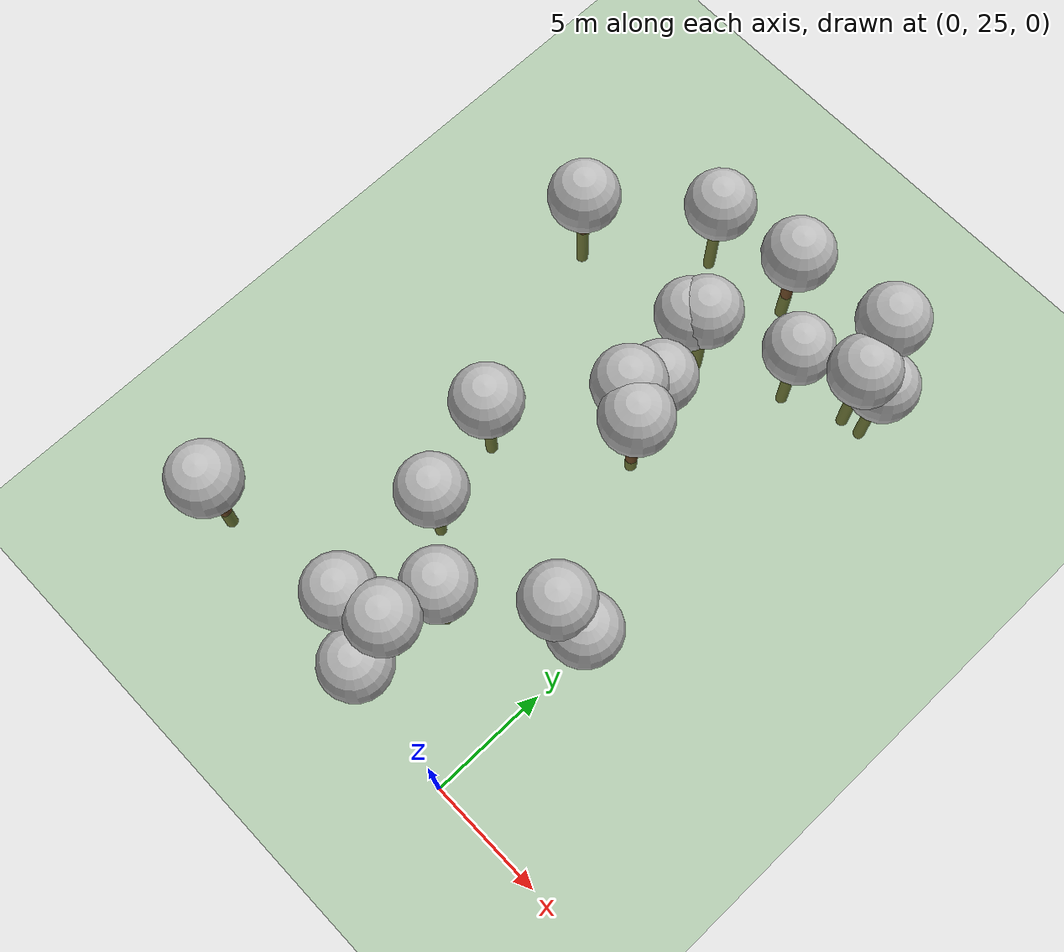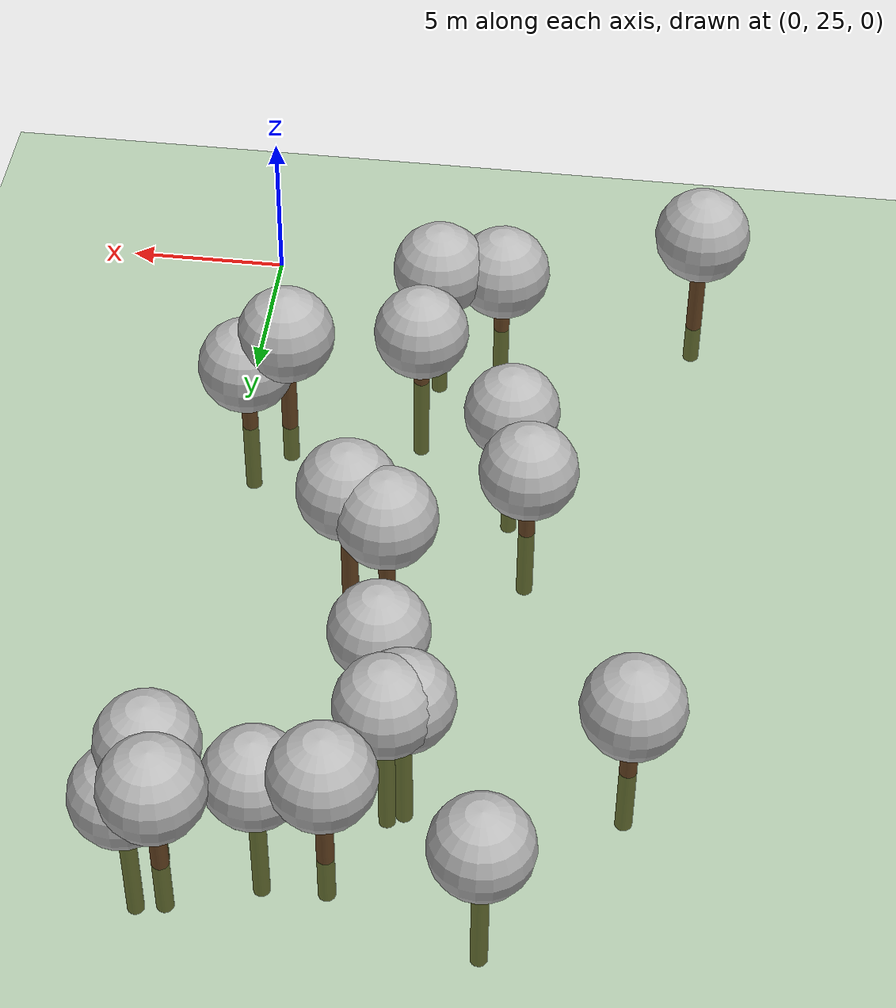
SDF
<sdf version="1.7">
 <world name="default">
  <model name="tree_simple492">
   <static>1</static>
   <link name="link">
    <pose>0 0 0.1 0 -0 0</pose>
    <collision name="collision_trunk">
     <pose>0 0 2 0 -0 0</pose>
     <geometry><cylinder><radius>0.25</radius><length>4</length></cylinder></geometry>
    </collision>
    <collision name="collision_treetop">
     <pose>0 0 5.2 0 -0 0</pose>
     <geometry><sphere><radius>1.5</radius></sphere></geometry>
    </collision>
    <visual name="trunk">
     <pose>0 0 2 0 -0 0</pose>
     <geometry><cylinder><radius>0.25</radius><length>4</length></cylinder></geometry>
     <material>
      <script>
       <uri>model://tree_simple/scripts</uri>
       <uri>model://tree_simple/materials/textures</uri>
       <name>TreeSimple/Trunk</name>
      </script>
     </material>
    </visual>
    <visual name="treetop">
     <pose>0 0 5.2 0 -0 0</pose>
     <geometry><sphere><radius>1.5</radius></sphere></geometry>
     <material>
      <script>
       <uri>model://tree_simple/scripts</uri>
       <uri>model://tree_simple/materials/textures</uri>
       <name>TreeSimple/Treetop</name>
      </script>
     </material>
    </visual>
   </link>
   <pose>-7.60604 27.1336 -2.96977 0 -0 0</pose>
  </model>
  <model name="tree_simple483">
   <static>1</static>
   <link name="link">
    <pose>0 0 0.1 0 -0 0</pose>
    <collision name="collision_trunk">
     <pose>0 0 2 0 -0 0</pose>
     <geometry><cylinder><radius>0.25</radius><length>4</length></cylinder></geometry>
    </collision>
    <collision name="collision_treetop">
     <pose>0 0 5.2 0 -0 0</pose>
     <geometry><sphere><radius>1.5</radius></sphere></geometry>
    </collision>
    <visual name="trunk">
     <pose>0 0 2 0 -0 0</pose>
     <geometry><cylinder><radius>0.25</radius><length>4</length></cylinder></geometry>
     <material>
      <script>
       <uri>model://tree_simple/scripts</uri>
       <uri>model://tree_simple/materials/textures</uri>
       <name>TreeSimple/Trunk</name>
      </script>
     </material>
    </visual>
    <visual name="treetop">
     <pose>0 0 5.2 0 -0 0</pose>
     <geometry><sphere><radius>1.5</radius></sphere></geometry>
     <material>
      <script>
       <uri>model://tree_simple/scripts</uri>
       <uri>model://tree_simple/materials/textures</uri>
       <name>TreeSimple/Treetop</name>
      </script>
     </material>
    </visual>
   </link>
   <pose>-6.65162 44.7613 -3.48208 0 -0 0</pose>
  </model>
  <model name="tree_simple477">
   <static>1</static>
   <link name="link">
    <pose>0 0 0.1 0 -0 0</pose>
    <collision name="collision_trunk">
     <pose>0 0 2 0 -0 0</pose>
     <geometry><cylinder><radius>0.25</radius><length>4</length></cylinder></geometry>
    </collision>
    <collision name="collision_treetop">
     <pose>0 0 5.2 0 -0 0</pose>
     <geometry><sphere><radius>1.5</radius></sphere></geometry>
    </collision>
    <visual name="trunk">
     <pose>0 0 2 0 -0 0</pose>
     <geometry><cylinder><radius>0.25</radius><length>4</length></cylinder></geometry>
     <material>
      <script>
       <uri>model://tree_simple/scripts</uri>
       <uri>model://tree_simple/materials/textures</uri>
       <name>TreeSimple/Trunk</name>
      </script>
     </material>
    </visual>
    <visual name="treetop">
     <pose>0 0 5.2 0 -0 0</pose>
     <geometry><sphere><radius>1.5</radius></sphere></geometry>
     <material>
      <script>
       <uri>model://tree_simple/scripts</uri>
       <uri>model://tree_simple/materials/textures</uri>
       <name>TreeSimple/Treetop</name>
      </script>
     </material>
    </visual>
   </link>
   <pose>-0.229271 32.6496 -2.76067 0 -0 0</pose>
  </model>
  <model name="tree_simple436">
   <static>1</static>
   <link name="link">
    <pose>0 0 0.1 0 -0 0</pose>
    <collision name="collision_trunk">
     <pose>0 0 2 0 -0 0</pose>
     <geometry><cylinder><radius>0.25</radius><length>4</length></cylinder></geometry>
    </collision>
    <collision name="collision_treetop">
     <pose>0 0 5.2 0 -0 0</pose>
     <geometry><sphere><radius>1.5</radius></sphere></geometry>
    </collision>
    <visual name="trunk">
     <pose>0 0 2 0 -0 0</pose>
     <geometry><cylinder><radius>0.25</radius><length>4</length></cylinder></geometry>
     <material>
      <script>
       <uri>model://tree_simple/scripts</uri>
       <uri>model://tree_simple/materials/textures</uri>
       <name>TreeSimple/Trunk</name>
      </script>
     </material>
    </visual>
    <visual name="treetop">
     <pose>0 0 5.2 0 -0 0</pose>
     <geometry><sphere><radius>1.5</radius></sphere></geometry>
     <material>
      <script>
       <uri>model://tree_simple/scripts</uri>
       <uri>model://tree_simple/materials/textures</uri>
       <name>TreeSimple/Treetop</name>
      </script>
     </material>
    </visual>
   </link>
   <pose>-12.9774 44.9895 -2.54678 0 -0 0</pose>
  </model>
  <model name="tree_simple425">
   <static>1</static>
   <link name="link">
    <pose>0 0 0.1 0 -0 0</pose>
    <collision name="collision_trunk">
     <pose>0 0 2 0 -0 0</pose>
     <geometry><cylinder><radius>0.25</radius><length>4</length></cylinder></geometry>
    </collision>
    <collision name="collision_treetop">
     <pose>0 0 5.2 0 -0 0</pose>
     <geometry><sphere><radius>1.5</radius></sphere></geometry>
    </collision>
    <visual name="trunk">
     <pose>0 0 2 0 -0 0</pose>
     <geometry><cylinder><radius>0.25</radius><length>4</length></cylinder></geometry>
     <material>
      <script>
       <uri>model://tree_simple/scripts</uri>
       <uri>model://tree_simple/materials/textures</uri>
       <name>TreeSimple/Trunk</name>
      </script>
     </material>
    </visual>
    <visual name="treetop">
     <pose>0 0 5.2 0 -0 0</pose>
     <geometry><sphere><radius>1.5</radius></sphere></geometry>
     <material>
      <script>
       <uri>model://tree_simple/scripts</uri>
       <uri>model://tree_simple/materials/textures</uri>
       <name>TreeSimple/Treetop</name>
      </script>
     </material>
    </visual>
   </link>
   <pose>-9.29415 36.1907 -2.72997 0 -0 0</pose>
  </model>
  <model name="tree_simple398">
   <static>1</static>
   <link name="link">
    <pose>0 0 0.1 0 -0 0</pose>
    <collision name="collision_trunk">
     <pose>0 0 2 0 -0 0</pose>
     <geometry><cylinder><radius>0.25</radius><length>4</length></cylinder></geometry>
    </collision>
    <collision name="collision_treetop">
     <pose>0 0 5.2 0 -0 0</pose>
     <geometry><sphere><radius>1.5</radius></sphere></geometry>
    </collision>
    <visual name="trunk">
     <pose>0 0 2 0 -0 0</pose>
     <geometry><cylinder><radius>0.25</radius><length>4</length></cylinder></geometry>
     <material>
      <script>
       <uri>model://tree_simple/scripts</uri>
       <uri>model://tree_simple/materials/textures</uri>
       <name>TreeSimple/Trunk</name>
      </script>
     </material>
    </visual>
    <visual name="treetop">
     <pose>0 0 5.2 0 -0 0</pose>
     <geometry><sphere><radius>1.5</radius></sphere></geometry>
     <material>
      <script>
       <uri>model://tree_simple/scripts</uri>
       <uri>model://tree_simple/materials/textures</uri>
       <name>TreeSimple/Treetop</name>
      </script>
     </material>
    </visual>
   </link>
   <pose>-5.63129 27.5986 -2.614 0 -0 0</pose>
  </model>
  <model name="tree_simple356">
   <static>1</static>
   <link name="link">
    <pose>0 0 0.1 0 -0 0</pose>
    <collision name="collision_trunk">
     <pose>0 0 2 0 -0 0</pose>
     <geometry><cylinder><radius>0.25</radius><length>4</length></cylinder></geometry>
    </collision>
    <collision name="collision_treetop">
     <pose>0 0 5.2 0 -0 0</pose>
     <geometry><sphere><radius>1.5</radius></sphere></geometry>
    </collision>
    <visual name="trunk">
     <pose>0 0 2 0 -0 0</pose>
     <geometry><cylinder><radius>0.25</radius><length>4</length></cylinder></geometry>
     <material>
      <script>
       <uri>model://tree_simple/scripts</uri>
       <uri>model://tree_simple/materials/textures</uri>
       <name>TreeSimple/Trunk</name>
      </script>
     </material>
    </visual>
    <visual name="treetop">
     <pose>0 0 5.2 0 -0 0</pose>
     <geometry><sphere><radius>1.5</radius></sphere></geometry>
     <material>
      <script>
       <uri>model://tree_simple/scripts</uri>
       <uri>model://tree_simple/materials/textures</uri>
       <name>TreeSimple/Treetop</name>
      </script>
     </material>
    </visual>
   </link>
   <pose>-2.8303 47.1649 -4.45525 0 -0 0</pose>
  </model>
  <model name="tree_simple353">
   <static>1</static>
   <link name="link">
    <pose>0 0 0.1 0 -0 0</pose>
    <collision name="collision_trunk">
     <pose>0 0 2 0 -0 0</pose>
     <geometry><cylinder><radius>0.25</radius><length>4</length></cylinder></geometry>
    </collision>
    <collision name="collision_treetop">
     <pose>0 0 5.2 0 -0 0</pose>
     <geometry><sphere><radius>1.5</radius></sphere></geometry>
    </collision>
    <visual name="trunk">
     <pose>0 0 2 0 -0 0</pose>
     <geometry><cylinder><radius>0.25</radius><length>4</length></cylinder></geometry>
     <material>
      <script>
       <uri>model://tree_simple/scripts</uri>
       <uri>model://tree_simple/materials/textures</uri>
       <name>TreeSimple/Trunk</name>
      </script>
     </material>
    </visual>
    <visual name="treetop">
     <pose>0 0 5.2 0 -0 0</pose>
     <geometry><sphere><radius>1.5</radius></sphere></geometry>
     <material>
      <script>
       <uri>model://tree_simple/scripts</uri>
       <uri>model://tree_simple/materials/textures</uri>
       <name>TreeSimple/Treetop</name>
      </script>
     </material>
    </visual>
   </link>
   <pose>-8.45319 32.4449 -3.95964 0 -0 0</pose>
  </model>
  <model name="tree_simple302">
   <static>1</static>
   <link name="link">
    <pose>0 0 0.1 0 -0 0</pose>
    <collision name="collision_trunk">
     <pose>0 0 2 0 -0 0</pose>
     <geometry><cylinder><radius>0.25</radius><length>4</length></cylinder></geometry>
    </collision>
    <collision name="collision_treetop">
     <pose>0 0 5.2 0 -0 0</pose>
     <geometry><sphere><radius>1.5</radius></sphere></geometry>
    </collision>
    <visual name="trunk">
     <pose>0 0 2 0 -0 0</pose>
     <geometry><cylinder><radius>0.25</radius><length>4</length></cylinder></geometry>
     <material>
      <script>
       <uri>model://tree_simple/scripts</uri>
       <uri>model://tree_simple/materials/textures</uri>
       <name>TreeSimple/Trunk</name>
      </script>
     </material>
    </visual>
    <visual name="treetop">
     <pose>0 0 5.2 0 -0 0</pose>
     <geometry><sphere><radius>1.5</radius></sphere></geometry>
     <material>
      <script>
       <uri>model://tree_simple/scripts</uri>
       <uri>model://tree_simple/materials/textures</uri>
       <name>TreeSimple/Treetop</name>
      </script>
     </material>
    </visual>
   </link>
   <pose>-4.36833 39.3035 -0.98079 0 -0 0</pose>
  </model>
  <model name="tree_simple299">
   <static>1</static>
   <link name="link">
    <pose>0 0 0.1 0 -0 0</pose>
    <collision name="collision_trunk">
     <pose>0 0 2 0 -0 0</pose>
     <geometry><cylinder><radius>0.25</radius><length>4</length></cylinder></geometry>
    </collision>
    <collision name="collision_treetop">
     <pose>0 0 5.2 0 -0 0</pose>
     <geometry><sphere><radius>1.5</radius></sphere></geometry>
    </collision>
    <visual name="trunk">
     <pose>0 0 2 0 -0 0</pose>
     <geometry><cylinder><radius>0.25</radius><length>4</length></cylinder></geometry>
     <material>
      <script>
       <uri>model://tree_simple/scripts</uri>
       <uri>model://tree_simple/materials/textures</uri>
       <name>TreeSimple/Trunk</name>
      </script>
     </material>
    </visual>
    <visual name="treetop">
     <pose>0 0 5.2 0 -0 0</pose>
     <geometry><sphere><radius>1.5</radius></sphere></geometry>
     <material>
      <script>
       <uri>model://tree_simple/scripts</uri>
       <uri>model://tree_simple/materials/textures</uri>
       <name>TreeSimple/Treetop</name>
      </script>
     </material>
    </visual>
   </link>
   <pose>-1.46806 32.4594 -1.52952 0 -0 0</pose>
  </model>
  <model name="tree_simple273">
   <static>1</static>
   <link name="link">
    <pose>0 0 0.1 0 -0 0</pose>
    <collision name="collision_trunk">
     <pose>0 0 2 0 -0 0</pose>
     <geometry><cylinder><radius>0.25</radius><length>4</length></cylinder></geometry>
    </collision>
    <collision name="collision_treetop">
     <pose>0 0 5.2 0 -0 0</pose>
     <geometry><sphere><radius>1.5</radius></sphere></geometry>
    </collision>
    <visual name="trunk">
     <pose>0 0 2 0 -0 0</pose>
     <geometry><cylinder><radius>0.25</radius><length>4</length></cylinder></geometry>
     <material>
      <script>
       <uri>model://tree_simple/scripts</uri>
       <uri>model://tree_simple/materials/textures</uri>
       <name>TreeSimple/Trunk</name>
      </script>
     </material>
    </visual>
    <visual name="treetop">
     <pose>0 0 5.2 0 -0 0</pose>
     <geometry><sphere><radius>1.5</radius></sphere></geometry>
     <material>
      <script>
       <uri>model://tree_simple/scripts</uri>
       <uri>model://tree_simple/materials/textures</uri>
       <name>TreeSimple/Treetop</name>
      </script>
     </material>
    </visual>
   </link>
   <pose>0.615453 48.3188 -4.31891 0 -0 0</pose>
  </model>
  <model name="tree_simple248">
   <static>1</static>
   <link name="link">
    <pose>0 0 0.1 0 -0 0</pose>
    <collision name="collision_trunk">
     <pose>0 0 2 0 -0 0</pose>
     <geometry><cylinder><radius>0.25</radius><length>4</length></cylinder></geometry>
    </collision>
    <collision name="collision_treetop">
     <pose>0 0 5.2 0 -0 0</pose>
     <geometry><sphere><radius>1.5</radius></sphere></geometry>
    </collision>
    <visual name="trunk">
     <pose>0 0 2 0 -0 0</pose>
     <geometry><cylinder><radius>0.25</radius><length>4</length></cylinder></geometry>
     <material>
      <script>
       <uri>model://tree_simple/scripts</uri>
       <uri>model://tree_simple/materials/textures</uri>
       <name>TreeSimple/Trunk</name>
      </script>
     </material>
    </visual>
    <visual name="treetop">
     <pose>0 0 5.2 0 -0 0</pose>
     <geometry><sphere><radius>1.5</radius></sphere></geometry>
     <material>
      <script>
       <uri>model://tree_simple/scripts</uri>
       <uri>model://tree_simple/materials/textures</uri>
       <name>TreeSimple/Treetop</name>
      </script>
     </material>
    </visual>
   </link>
   <pose>-9.31616 49.2287 -3.78557 0 -0 0</pose>
  </model>
  <model name="tree_simple213">
   <static>1</static>
   <link name="link">
    <pose>0 0 0.1 0 -0 0</pose>
    <collision name="collision_trunk">
     <pose>0 0 2 0 -0 0</pose>
     <geometry><cylinder><radius>0.25</radius><length>4</length></cylinder></geometry>
    </collision>
    <collision name="collision_treetop">
     <pose>0 0 5.2 0 -0 0</pose>
     <geometry><sphere><radius>1.5</radius></sphere></geometry>
    </collision>
    <visual name="trunk">
     <pose>0 0 2 0 -0 0</pose>
     <geometry><cylinder><radius>0.25</radius><length>4</length></cylinder></geometry>
     <material>
      <script>
       <uri>model://tree_simple/scripts</uri>
       <uri>model://tree_simple/materials/textures</uri>
       <name>TreeSimple/Trunk</name>
      </script>
     </material>
    </visual>
    <visual name="treetop">
     <pose>0 0 5.2 0 -0 0</pose>
     <geometry><sphere><radius>1.5</radius></sphere></geometry>
     <material>
      <script>
       <uri>model://tree_simple/scripts</uri>
       <uri>model://tree_simple/materials/textures</uri>
       <name>TreeSimple/Treetop</name>
      </script>
     </material>
    </visual>
   </link>
   <pose>-6.21217 45.1783 -3.27081 0 -0 0</pose>
  </model>
  <model name="tree_simple184">
   <static>1</static>
   <link name="link">
    <pose>0 0 0.1 0 -0 0</pose>
    <collision name="collision_trunk">
     <pose>0 0 2 0 -0 0</pose>
     <geometry><cylinder><radius>0.25</radius><length>4</length></cylinder></geometry>
    </collision>
    <collision name="collision_treetop">
     <pose>0 0 5.2 0 -0 0</pose>
     <geometry><sphere><radius>1.5</radius></sphere></geometry>
    </collision>
    <visual name="trunk">
     <pose>0 0 2 0 -0 0</pose>
     <geometry><cylinder><radius>0.25</radius><length>4</length></cylinder></geometry>
     <material>
      <script>
       <uri>model://tree_simple/scripts</uri>
       <uri>model://tree_simple/materials/textures</uri>
       <name>TreeSimple/Trunk</name>
      </script>
     </material>
    </visual>
    <visual name="treetop">
     <pose>0 0 5.2 0 -0 0</pose>
     <geometry><sphere><radius>1.5</radius></sphere></geometry>
     <material>
      <script>
       <uri>model://tree_simple/scripts</uri>
       <uri>model://tree_simple/materials/textures</uri>
       <name>TreeSimple/Treetop</name>
      </script>
     </material>
    </visual>
   </link>
   <pose>-0.656303 49.6634 -2.11281 0 -0 0</pose>
  </model>
  <model name="tree_simple161">
   <static>1</static>
   <link name="link">
    <pose>0 0 0.1 0 -0 0</pose>
    <collision name="collision_trunk">
     <pose>0 0 2 0 -0 0</pose>
     <geometry><cylinder><radius>0.25</radius><length>4</length></cylinder></geometry>
    </collision>
    <collision name="collision_treetop">
     <pose>0 0 5.2 0 -0 0</pose>
     <geometry><sphere><radius>1.5</radius></sphere></geometry>
    </collision>
    <visual name="trunk">
     <pose>0 0 2 0 -0 0</pose>
     <geometry><cylinder><radius>0.25</radius><length>4</length></cylinder></geometry>
     <material>
      <script>
       <uri>model://tree_simple/scripts</uri>
       <uri>model://tree_simple/materials/textures</uri>
       <name>TreeSimple/Trunk</name>
      </script>
     </material>
    </visual>
    <visual name="treetop">
     <pose>0 0 5.2 0 -0 0</pose>
     <geometry><sphere><radius>1.5</radius></sphere></geometry>
     <material>
      <script>
       <uri>model://tree_simple/scripts</uri>
       <uri>model://tree_simple/materials/textures</uri>
       <name>TreeSimple/Treetop</name>
      </script>
     </material>
    </visual>
   </link>
   <pose>-5.06083 48.9464 -1.81839 0 -0 0</pose>
  </model>
  <model name="tree_simple110">
   <static>1</static>
   <link name="link">
    <pose>0 0 0.1 0 -0 0</pose>
    <collision name="collision_trunk">
     <pose>0 0 2 0 -0 0</pose>
     <geometry><cylinder><radius>0.25</radius><length>4</length></cylinder></geometry>
    </collision>
    <collision name="collision_treetop">
     <pose>0 0 5.2 0 -0 0</pose>
     <geometry><sphere><radius>1.5</radius></sphere></geometry>
    </collision>
    <visual name="trunk">
     <pose>0 0 2 0 -0 0</pose>
     <geometry><cylinder><radius>0.25</radius><length>4</length></cylinder></geometry>
     <material>
      <script>
       <uri>model://tree_simple/scripts</uri>
       <uri>model://tree_simple/materials/textures</uri>
       <name>TreeSimple/Trunk</name>
      </script>
     </material>
    </visual>
    <visual name="treetop">
     <pose>0 0 5.2 0 -0 0</pose>
     <geometry><sphere><radius>1.5</radius></sphere></geometry>
     <material>
      <script>
       <uri>model://tree_simple/scripts</uri>
       <uri>model://tree_simple/materials/textures</uri>
       <name>TreeSimple/Treetop</name>
      </script>
     </material>
    </visual>
   </link>
   <pose>-5.41034 25.8326 -4.15912 0 -0 0</pose>
  </model>
  <model name="tree_simple92">
   <static>1</static>
   <link name="link">
    <pose>0 0 0.1 0 -0 0</pose>
    <collision name="collision_trunk">
     <pose>0 0 2 0 -0 0</pose>
     <geometry><cylinder><radius>0.25</radius><length>4</length></cylinder></geometry>
    </collision>
    <collision name="collision_treetop">
     <pose>0 0 5.2 0 -0 0</pose>
     <geometry><sphere><radius>1.5</radius></sphere></geometry>
    </collision>
    <visual name="trunk">
     <pose>0 0 2 0 -0 0</pose>
     <geometry><cylinder><radius>0.25</radius><length>4</length></cylinder></geometry>
     <material>
      <script>
       <uri>model://tree_simple/scripts</uri>
       <uri>model://tree_simple/materials/textures</uri>
       <name>TreeSimple/Trunk</name>
      </script>
     </material>
    </visual>
    <visual name="treetop">
     <pose>0 0 5.2 0 -0 0</pose>
     <geometry><sphere><radius>1.5</radius></sphere></geometry>
     <material>
      <script>
       <uri>model://tree_simple/scripts</uri>
       <uri>model://tree_simple/materials/textures</uri>
       <name>TreeSimple/Treetop</name>
      </script>
     </material>
    </visual>
   </link>
   <pose>-5.60936 42.0879 -3.73282 0 -0 0</pose>
  </model>
  <model name="tree_simple59">
   <static>1</static>
   <link name="link">
    <pose>0 0 0.1 0 -0 0</pose>
    <collision name="collision_trunk">
     <pose>0 0 2 0 -0 0</pose>
     <geometry><cylinder><radius>0.25</radius><length>4</length></cylinder></geometry>
    </collision>
    <collision name="collision_treetop">
     <pose>0 0 5.2 0 -0 0</pose>
     <geometry><sphere><radius>1.5</radius></sphere></geometry>
    </collision>
    <visual name="trunk">
     <pose>0 0 2 0 -0 0</pose>
     <geometry><cylinder><radius>0.25</radius><length>4</length></cylinder></geometry>
     <material>
      <script>
       <uri>model://tree_simple/scripts</uri>
       <uri>model://tree_simple/materials/textures</uri>
       <name>TreeSimple/Trunk</name>
      </script>
     </material>
    </visual>
    <visual name="treetop">
     <pose>0 0 5.2 0 -0 0</pose>
     <geometry><sphere><radius>1.5</radius></sphere></geometry>
     <material>
      <script>
       <uri>model://tree_simple/scripts</uri>
       <uri>model://tree_simple/materials/textures</uri>
       <name>TreeSimple/Treetop</name>
      </script>
     </material>
    </visual>
   </link>
   <pose>-5.58238 40.1231 -1.12497 0 -0 0</pose>
  </model>
  <model name="tree_simple32">
   <static>1</static>
   <link name="link">
    <pose>0 0 0.1 0 -0 0</pose>
    <collision name="collision_trunk">
     <pose>0 0 2 0 -0 0</pose>
     <geometry><cylinder><radius>0.25</radius><length>4</length></cylinder></geometry>
    </collision>
    <collision name="collision_treetop">
     <pose>0 0 5.2 0 -0 0</pose>
     <geometry><sphere><radius>1.5</radius></sphere></geometry>
    </collision>
    <visual name="trunk">
     <pose>0 0 2 0 -0 0</pose>
     <geometry><cylinder><radius>0.25</radius><length>4</length></cylinder></geometry>
     <material>
      <script>
       <uri>model://tree_simple/scripts</uri>
       <uri>model://tree_simple/materials/textures</uri>
       <name>TreeSimple/Trunk</name>
      </script>
     </material>
    </visual>
    <visual name="treetop">
     <pose>0 0 5.2 0 -0 0</pose>
     <geometry><sphere><radius>1.5</radius></sphere></geometry>
     <material>
      <script>
       <uri>model://tree_simple/scripts</uri>
       <uri>model://tree_simple/materials/textures</uri>
       <name>TreeSimple/Treetop</name>
      </script>
     </material>
    </visual>
   </link>
   <pose>-5.32221 29.9695 -3.25538 0 -0 0</pose>
  </model>
  <model name="tree_simple17">
   <static>1</static>
   <link name="link">
    <pose>0 0 0.1 0 -0 0</pose>
    <collision name="collision_trunk">
     <pose>0 0 2 0 -0 0</pose>
     <geometry><cylinder><radius>0.25</radius><length>4</length></cylinder></geometry>
    </collision>
    <collision name="collision_treetop">
     <pose>0 0 5.2 0 -0 0</pose>
     <geometry><sphere><radius>1.5</radius></sphere></geometry>
    </collision>
    <visual name="trunk">
     <pose>0 0 2 0 -0 0</pose>
     <geometry><cylinder><radius>0.25</radius><length>4</length></cylinder></geometry>
     <material>
      <script>
       <uri>model://tree_simple/scripts</uri>
       <uri>model://tree_simple/materials/textures</uri>
       <name>TreeSimple/Trunk</name>
      </script>
     </material>
    </visual>
    <visual name="treetop">
     <pose>0 0 5.2 0 -0 0</pose>
     <geometry><sphere><radius>1.5</radius></sphere></geometry>
     <material>
      <script>
       <uri>model://tree_simple/scripts</uri>
       <uri>model://tree_simple/materials/textures</uri>
       <name>TreeSimple/Treetop</name>
      </script>
     </material>
    </visual>
   </link>
   <pose>-13.8288 26.265 -1.50869 0 -0 0</pose>
  </model>
  <model name="tree_simple8">
   <static>1</static>
   <link name="link">
    <pose>0 0 0.1 0 -0 0</pose>
    <collision name="collision_trunk">
     <pose>0 0 2 0 -0 0</pose>
     <geometry><cylinder><radius>0.25</radius><length>4</length></cylinder></geometry>
    </collision>
    <collision name="collision_treetop">
     <pose>0 0 5.2 0 -0 0</pose>
     <geometry><sphere><radius>1.5</radius></sphere></geometry>
    </collision>
    <visual name="trunk">
     <pose>0 0 2 0 -0 0</pose>
     <geometry><cylinder><radius>0.25</radius><length>4</length></cylinder></geometry>
     <material>
      <script>
       <uri>model://tree_simple/scripts</uri>
       <uri>model://tree_simple/materials/textures</uri>
       <name>TreeSimple/Trunk</name>
      </script>
     </material>
    </visual>
    <visual name="treetop">
     <pose>0 0 5.2 0 -0 0</pose>
     <geometry><sphere><radius>1.5</radius></sphere></geometry>
     <material>
      <script>
       <uri>model://tree_simple/scripts</uri>
       <uri>model://tree_simple/materials/textures</uri>
       <name>TreeSimple/Treetop</name>
      </script>
     </material>
    </visual>
   </link>
   <pose>-0.080688 47.6135 -2.83062 0 -0 0</pose>
  </model>
  <model name="ground_plane">
   <static>1</static>
   <link name="link">
    <collision name="collision">
     <geometry><plane><normal>0 0 1</normal><size>250 250</size></plane></geometry>
     <surface><friction><ode><mu>1</mu><mu2>1</mu2></ode></friction></surface>
    </collision>
    <visual name="grass">
     <cast_shadows>0</cast_shadows>
     <geometry><plane><normal>0 0 1</normal><size>150 250</size></plane></geometry>
     <material>
      <script><uri>file://media/materials/scripts/Gazebo.material</uri><name>Gazebo/Grass</name></script>
     </material>
    </visual>
   </link>
  </model>
 </world>
</sdf>
